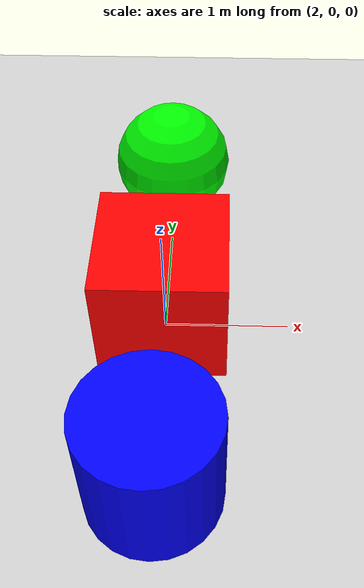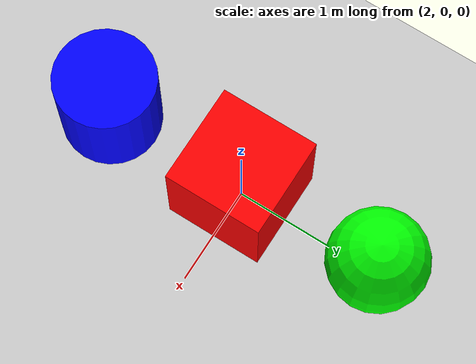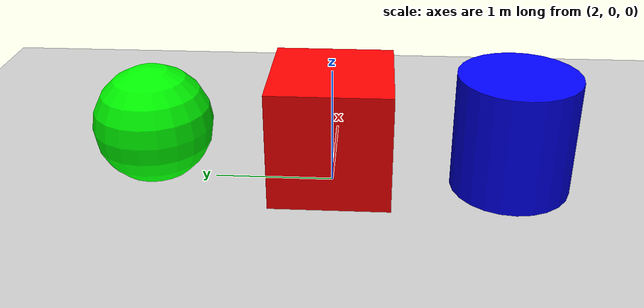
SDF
<?xml version="1.0" ?>
<sdf version="1.6">
    <world name="gimbal_world">
        <light type="directional" name="sun">
            <cast_shadows>true</cast_shadows>
            <pose>0 0 10 0 0 0</pose>
            <diffuse>0.8 0.8 0.8 1</diffuse>
            <specular>0.2 0.2 0.2 1</specular>
            <attenuation>
                <range>1000</range>
                <constant>0.9</constant>
                <linear>0.01</linear>
                <quadratic>0.001</quadratic>
            </attenuation>
            <direction>-0.5 0.1 -0.9</direction>
        </light>

        <model name="ground_plane">
            <static>true</static>
            <link name="link">
                <collision name="collision">
                    <geometry>
                        <plane>
                            <normal>0 0 1</normal>
                            <size>100 100</size>
                        </plane>
                    </geometry>
                </collision>
                <visual name="visual">
                    <geometry>
                        <plane>
                            <normal>0 0 1</normal>
                            <size>100 100</size>
                        </plane>
                    </geometry>
                    <material>
                        <ambient>0.8 0.8 0.8 1</ambient>
                        <diffuse>0.8 0.8 0.8 1</diffuse>
                        <specular>0.8 0.8 0.8 1</specular>
                    </material>
                </visual>
            </link>
        </model>
        <model name="red_box">
            <pose>2 0 0.5 0 0 0</pose> <static>true</static>
            <link name="link">
                <collision name="collision">
                    <geometry>
                        <box><size>1 1 1</size></box>
                    </geometry>
                </collision>
                <visual name="visual">
                    <geometry>
                        <box><size>1 1 1</size></box>
                    </geometry>
                    <material>
                        <ambient>1 0 0 1</ambient>
                        <diffuse>1 0 0 1</diffuse> <specular>0.5 0.5 0.5 1</specular>
                    </material>
                </visual>
            </link>
        </model>

        <model name="blue_cylinder">
            <pose>2 -1.5 0.5 0 0 0</pose> <static>true</static>
            <link name="link">
                <collision name="collision">
                    <geometry>
                        <cylinder><radius>0.5</radius><length>1</length></cylinder>
                    </geometry>
                </collision>
                <visual name="visual">
                    <geometry>
                        <cylinder><radius>0.5</radius><length>1</length></cylinder>
                    </geometry>
                    <material>
                        <ambient>0 0 1 1</ambient>
                        <diffuse>0 0 1 1</diffuse> <specular>0.5 0.5 0.5 1</specular>
                    </material>
                </visual>
            </link>
        </model>

        <model name="green_sphere">
            <pose>2 1.5 0.5 0 0 0</pose> <static>true</static>
            <link name="link">
                <collision name="collision">
                    <geometry>
                        <sphere><radius>0.5</radius></sphere>
                    </geometry>
                </collision>
                <visual name="visual">
                    <geometry>
                        <sphere><radius>0.5</radius></sphere>
                    </geometry>
                    <material>
                        <ambient>0 1 0 1</ambient>
                        <diffuse>0 1 0 1</diffuse> <specular>0.5 0.5 0.5 1</specular>
                    </material>
                </visual>
            </link>
        </model>
    </world>
</sdf>
